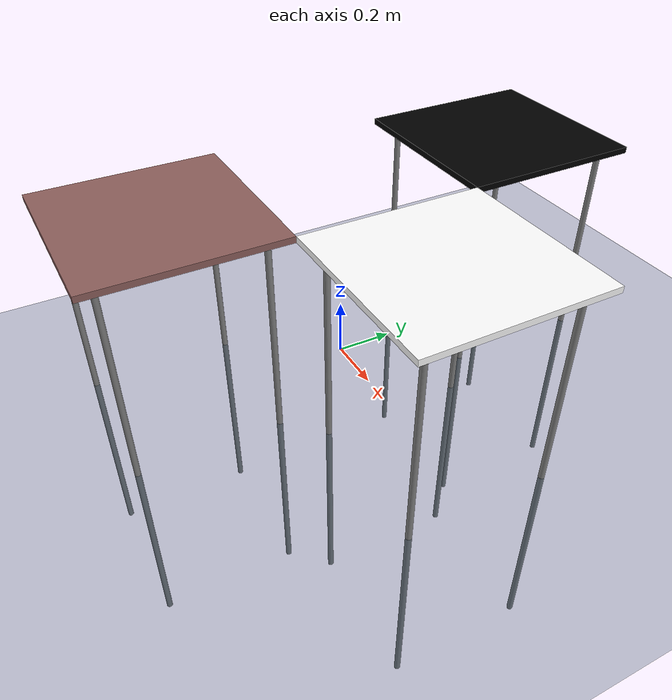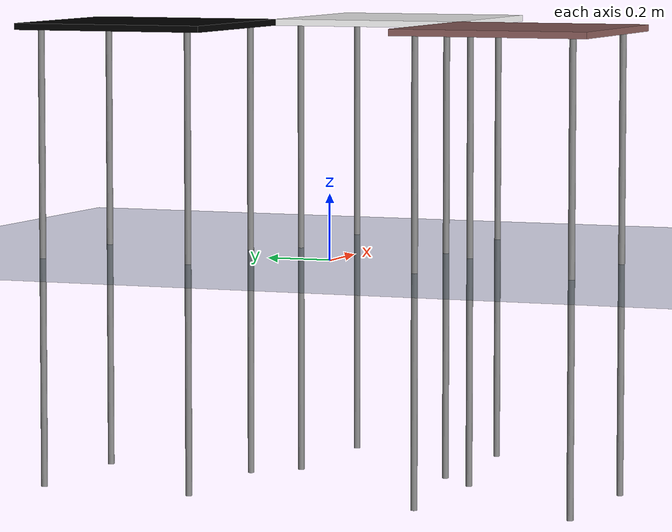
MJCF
<mujoco model="tableworld">
    <compiler eulerseq="XYZ"/>
    <statistic center="0.3 0 0.4" extent="0.8"/>

    <visual>
        <headlight diffuse="0.6 0.6 0.6" ambient="0.1 0.1 0.1" specular="0 0 0"/>
        <rgba haze="0.15 0.25 0.35 1"/>
        <global azimuth="120" elevation="-20"/>
    </visual>

    <asset>
        <texture type="skybox" builtin="gradient" rgb1="0.3 0.5 0.7" rgb2="0 0 0" width="512" height="3072"/>
        <texture type="2d" name="groundplane" builtin="checker" mark="edge" rgb1="0.2 0.3 0.4" rgb2="0.1 0.2 0.3"
                 markrgb="0.8 0.8 0.8" width="300" height="300"/>
        <material name="groundplane" texture="groundplane" texuniform="true" texrepeat="5 5" reflectance="0.2"/>

    </asset>

    <worldbody>
        <light pos="0 0 1.5" dir="0 0 -1" directional="true"/>
        <geom name="floor" pos="0.0 0.0 0.0" size="0 0 0.05" type="plane" material="groundplane"/>

        <body name="table_brown" pos="0.0 -0.6 0">
            <geom name="table_brown_top" type="box" size=".30 .30 .01" pos="0 0 .7" rgba="0.55 0.37 0.36 1"/>
            <geom name="table_brown_leg_1" type="cylinder" size=".01 .7" pos=".24 -.24 -.0" euler="0 0 0"/>
            <geom name="table_brown_leg_2" type="cylinder" size=".01 .7" pos=".24 .24 -.0" euler="0 0 0"/>
            <geom name="table_brown_leg_3" type="cylinder" size=".01 .7" pos="-.24 -.24 -.0" euler="0 0 0"/>
            <geom name="table_brown_leg_4" type="cylinder" size=".01 .7" pos="-.24 .24 -.0" euler="0 0 0"/>
        </body>

        <body name="table_black" pos="0 0.6 0">
            <geom name="table_black_top" type="box" size=".30 .30 .01" pos="0 0 .7" rgba="0 0 0 1"/>
            <geom name="table_black_leg_1" type="cylinder" size=".01 .7" pos=".24 -.24 -.0" euler="0 0 0"/>
            <geom name="table_black_leg_2" type="cylinder" size=".01 .7" pos=".24 .24 -.0" euler="0 0 0"/>
            <geom name="table_black_leg_3" type="cylinder" size=".01 .7" pos="-.24 -.24 -.0" euler="0 0 0"/>
            <geom name="table_black_leg_4" type="cylinder" size=".01 .7" pos="-.24 .24 -.0" euler="0 0 0"/>
        </body>

        <body name="table_white" pos="0.6 0 0">
            <geom name="table_white_top" type="box" size=".30 .30 .01" pos="0 0 .7" rgba="1 1 1 1"/>
            <geom name="table_white_leg_1" type="cylinder" size=".01 .7" pos=".24 -.24 -.0" euler="0 0 0"/>
            <geom name="table_white_leg_2" type="cylinder" size=".01 .7" pos=".24 .24 -.0" euler="0 0 0"/>
            <geom name="table_white_leg_3" type="cylinder" size=".01 .7" pos="-.24 -.24 -.0" euler="0 0 0"/>
            <geom name="table_white_leg_4" type="cylinder" size=".01 .7" pos="-.24 .24 -.0" euler="0 0 0"/>
        </body>

        <!--angle view-->
        <camera name="rightangleview" pos="2.182 1.724 2.590" xyaxes="-0.685 0.729 0.000 -0.456 -0.429 0.780"/>
        <camera name="leftangleview" pos="2.182 -1.724 2.590" xyaxes="0.685 0.729 0.000 -0.456 0.429 0.780"/>
        <!-- front view -->
        <camera mode="fixed" name="frontview" pos="2.5 0 1.45" quat="0.56 0.43 0.43 0.56"/>
        <!-- bird view -->
        <camera mode="fixed" name="birdview" pos="-0.2 0 3.5" quat="0.7071 0 0 0.7071"/>
        <!-- side view -->
        <camera mode="fixed" name="leftsideview" pos="0.151 -2.941 0.9" xyaxes="1.000 0.000 0.000 0.000 0.000 1.000"/>
        <camera mode="fixed" name="rightsideview" pos="0.151 2.941 0.9" xyaxes="-1.000 0.000 0.000 0.000 0.000 1.000"/>

    </worldbody>

</mujoco>
